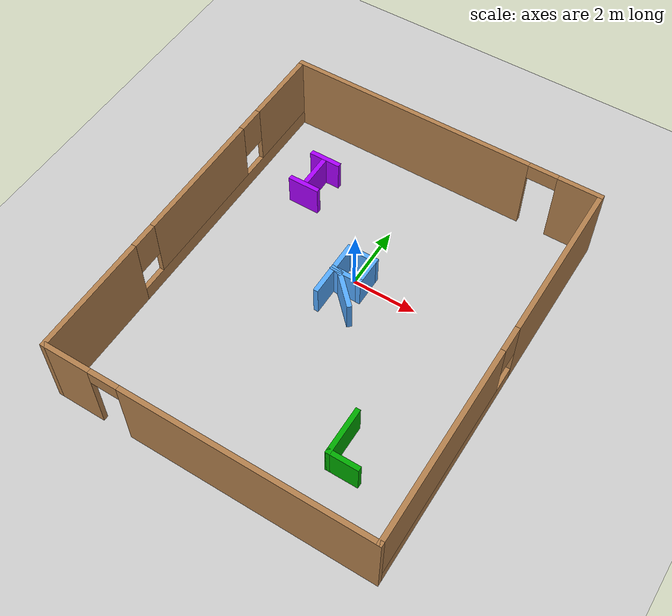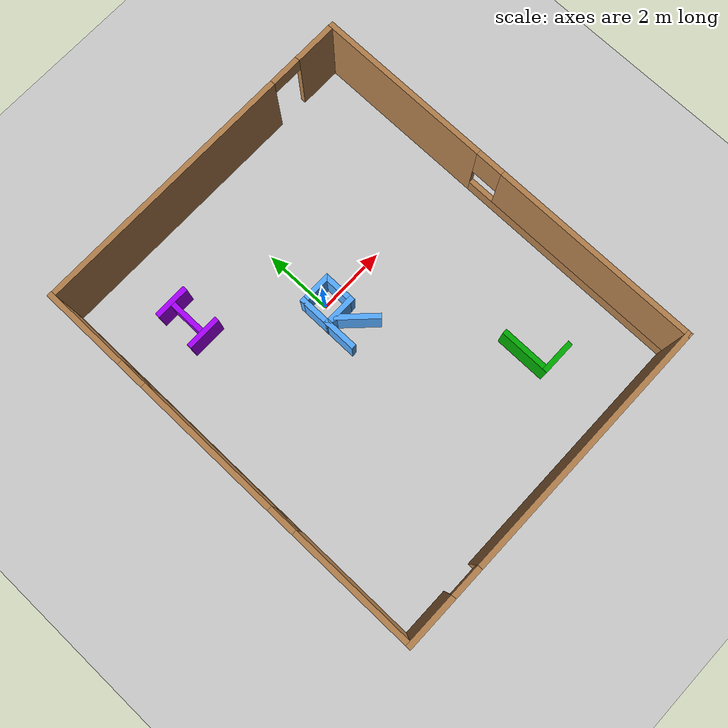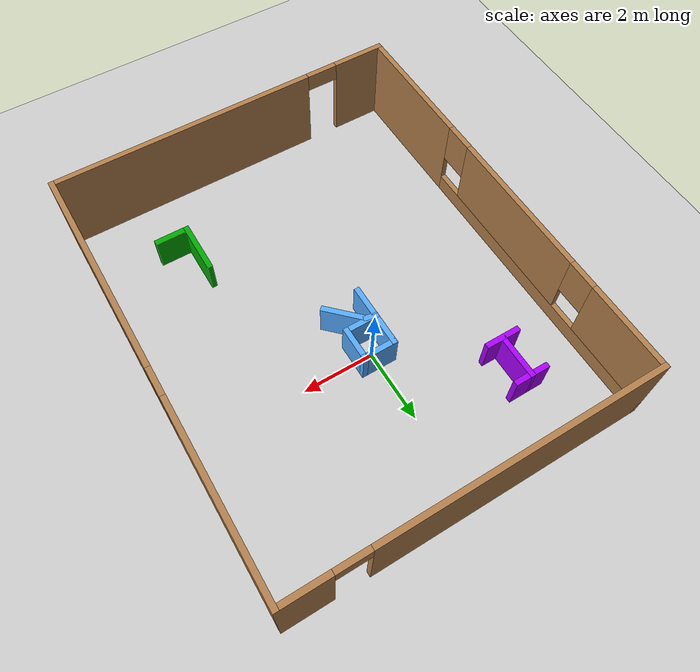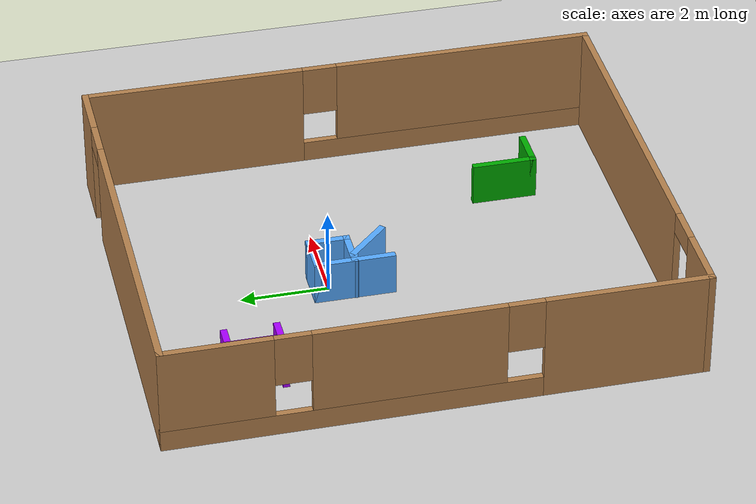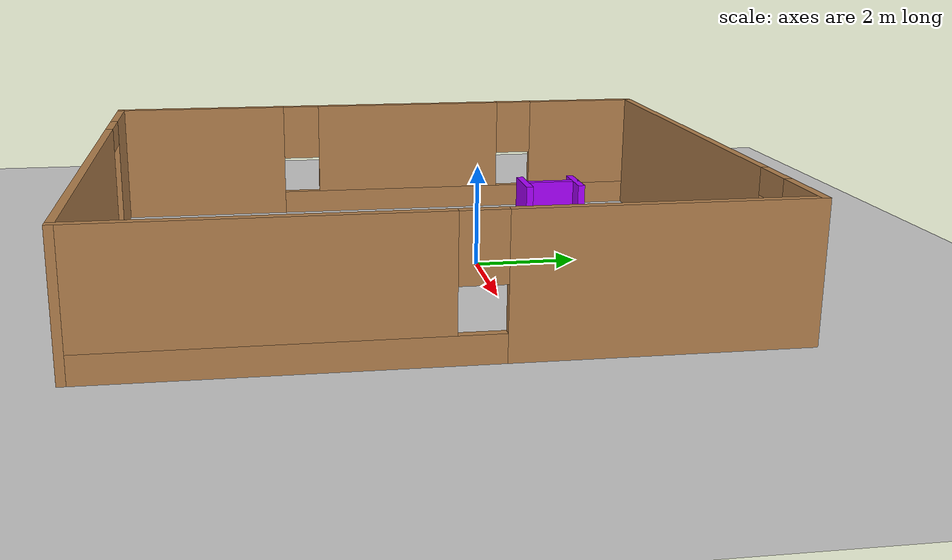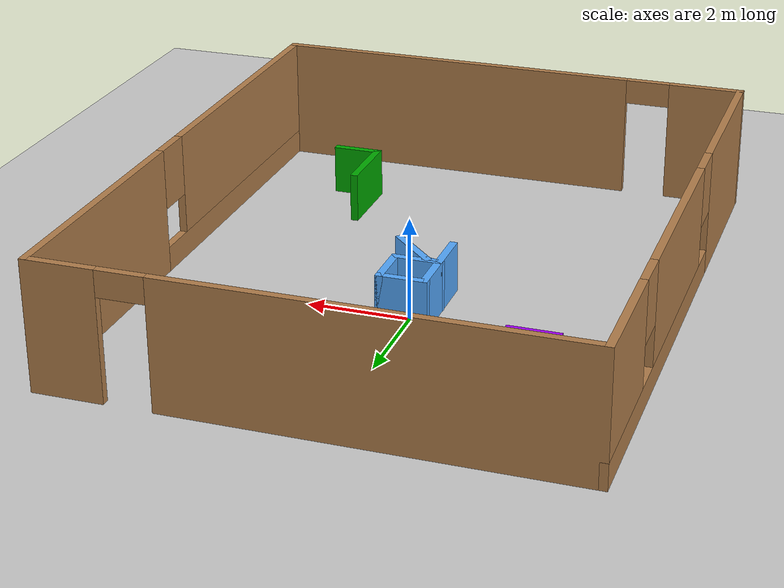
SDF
<sdf version="1.6">
 <world name="default">
  <light name="sun" type="directional">
   <pose>0 0 10 0 -0 0</pose>
   <diffuse>0.8 0.8 0.8 1</diffuse>
   <specular>0.1 0.1 0.1 1</specular>
   <attenuation>
    <range>1000</range>
    <constant>0.9</constant>
    <linear>0.01</linear>
    <quadratic>0.001</quadratic>
   </attenuation>
   <direction>-0.5 0.5 -1</direction>
  </light>
  <model name="ground_plane">
   <static>1</static>
   <link name="link">
    <collision name="collision">
     <geometry><plane><normal>0 0 1</normal><size>100 100</size></plane></geometry>
     <surface><friction><ode><mu>100</mu><mu2>50</mu2></ode></friction></surface>
    </collision>
    <visual name="visual">
     <cast_shadows>0</cast_shadows>
     <geometry><plane><normal>0 0 1</normal><size>100 100</size></plane></geometry>
     <material>
      <script><uri>file://media/materials/scripts/gazebo.material</uri><name>Gazebo/Grey</name></script>
     </material>
    </visual>
   </link>
  </model>
  <gravity>0 0 -9.8</gravity>
  <magnetic_field>6e-06 2.3e-05 -4.2e-05</magnetic_field>
  <atmosphere type="adiabatic"/>
  <physics name="default_physics" default="0" type="ode">
   <max_step_size>0.001</max_step_size>
   <real_time_factor>1</real_time_factor>
   <real_time_update_rate>1000</real_time_update_rate>
  </physics>
  <scene><ambient>0.4 0.4 0.4 1</ambient><background>0.7 0.7 0.7 1</background><shadows>1</shadows></scene>
  <spherical_coordinates>
   <surface_model>EARTH_WGS84</surface_model>
   <latitude_deg>0</latitude_deg>
   <longitude_deg>0</longitude_deg>
   <elevation>0</elevation>
   <heading_deg>0</heading_deg>
  </spherical_coordinates>
  <model name="IRL_lab_0">
   <pose>0.221897 -1.37505 0 0 -0 0</pose>
   <link name="Wall_29">
    <collision name="Wall_29_Collision">
     <geometry><box><size>1 0.15 1</size></box></geometry>
     <pose>0 0 0.5 0 -0 0</pose>
    </collision>
    <visual name="Wall_29_Visual">
     <pose>0 0 0.5 0 -0 0</pose>
     <geometry><box><size>1 0.15 1</size></box></geometry>
     <material>
      <script><uri>file://media/materials/scripts/gazebo.material</uri><name>Gazebo/Grey</name></script>
      <ambient>0.666667 0 1 1</ambient>
     </material>
    </visual>
    <pose>-2.97411 4.16319 0 0 -0 0</pose>
   </link>
   <link name="Wall_31">
    <collision name="Wall_31_Collision">
     <geometry><box><size>1.25 0.15 1</size></box></geometry>
     <pose>0 0 0.5 0 -0 0</pose>
    </collision>
    <visual name="Wall_31_Visual">
     <pose>0 0 0.5 0 -0 0</pose>
     <geometry><box><size>1.25 0.15 1</size></box></geometry>
     <material>
      <script><uri>file://media/materials/scripts/gazebo.material</uri><name>Gazebo/Grey</name></script>
      <ambient>0.666667 0 1 1</ambient>
     </material>
    </visual>
    <pose>-2.97911 3.61319 0 0 0 -1.5708</pose>
   </link>
   <link name="Wall_33">
    <collision name="Wall_33_Collision">
     <geometry><box><size>1 0.15 1</size></box></geometry>
     <pose>0 0 0.5 0 -0 0</pose>
    </collision>
    <visual name="Wall_33_Visual">
     <pose>0 0 0.5 0 -0 0</pose>
     <geometry><box><size>1 0.15 1</size></box></geometry>
     <material>
      <script><uri>file://media/materials/scripts/gazebo.material</uri><name>Gazebo/Grey</name></script>
      <ambient>0.666667 0 1 1</ambient>
     </material>
    </visual>
    <pose>-2.98211 3.00119 0 0 -0 0</pose>
   </link>
   <link name="Wall_35">
    <collision name="Wall_35_Collision">
     <geometry><box><size>1 0.15 1</size></box></geometry>
     <pose>0 0 0.5 0 -0 0</pose>
    </collision>
    <visual name="Wall_35_Visual">
     <pose>0 0 0.5 0 -0 0</pose>
     <geometry><box><size>1 0.15 1</size></box></geometry>
     <material>
      <script><uri>file://media/materials/scripts/gazebo.material</uri><name>Gazebo/Grey</name></script>
      <ambient>0.333333 0.666667 1 1</ambient>
     </material>
    </visual>
    <pose>-0.611111 1.28619 0 0 0 -1.5708</pose>
   </link>
   <link name="Wall_36">
    <collision name="Wall_36_Collision">
     <geometry><box><size>1 0.15 1</size></box></geometry>
     <pose>0 0 0.5 0 -0 0</pose>
    </collision>
    <visual name="Wall_36_Visual">
     <pose>0 0 0.5 0 -0 0</pose>
     <geometry><box><size>1 0.15 1</size></box></geometry>
     <material>
      <script><uri>file://media/materials/scripts/gazebo.material</uri><name>Gazebo/Grey</name></script>
      <ambient>0.333333 0.666667 1 1</ambient>
     </material>
    </visual>
    <pose>-0.186111 0.861194 0 0 -0 0</pose>
   </link>
   <link name="Wall_37">
    <collision name="Wall_37_Collision">
     <geometry><box><size>1 0.15 1</size></box></geometry>
     <pose>0 0 0.5 0 -0 0</pose>
    </collision>
    <visual name="Wall_37_Visual">
     <pose>0 0 0.5 0 -0 0</pose>
     <geometry><box><size>1 0.15 1</size></box></geometry>
     <material>
      <script><uri>file://media/materials/scripts/gazebo.material</uri><name>Gazebo/Grey</name></script>
      <ambient>0.333333 0.666667 1 1</ambient>
     </material>
    </visual>
    <pose>0.238889 1.28619 0 0 -0 1.5708</pose>
   </link>
   <link name="Wall_38">
    <collision name="Wall_38_Collision">
     <geometry><box><size>1 0.15 1</size></box></geometry>
     <pose>0 0 0.5 0 -0 0</pose>
    </collision>
    <visual name="Wall_38_Visual">
     <pose>0 0 0.5 0 -0 0</pose>
     <geometry><box><size>1 0.15 1</size></box></geometry>
     <material>
      <script><uri>file://media/materials/scripts/gazebo.material</uri><name>Gazebo/Grey</name></script>
      <ambient>0.333333 0.666667 1 1</ambient>
     </material>
    </visual>
    <pose>-0.186111 1.71119 0 0 -0 3.14159</pose>
   </link>
   <link name="Wall_40">
    <collision name="Wall_40_Collision">
     <geometry><box><size>1 0.15 1</size></box></geometry>
     <pose>0 0 0.5 0 -0 0</pose>
    </collision>
    <visual name="Wall_40_Visual">
     <pose>0 0 0.5 0 -0 0</pose>
     <geometry><box><size>1 0.15 1</size></box></geometry>
     <material>
      <script><uri>file://media/materials/scripts/gazebo.material</uri><name>Gazebo/Grey</name></script>
      <ambient>0.333333 0.666667 1 1</ambient>
     </material>
    </visual>
    <pose>-0.611111 0.436194 0 0 0 -1.5708</pose>
   </link>
   <link name="Wall_6">
    <pose>0 5.925 0 0 -0 0</pose>
    <visual name="Wall_6_Visual_0">
     <pose>-1.13461 0 1.25 0 -0 0</pose>
     <geometry><box><size>7.73077 0.15 2.5</size></box></geometry>
     <material>
      <script><uri>file://media/materials/scripts/gazebo.material</uri><name>Gazebo/Wood</name></script>
      <ambient>1 1 1 1</ambient>
     </material>
    </visual>
    <collision name="Wall_6_Collision_0">
     <geometry><box><size>7.73077 0.15 2.5</size></box></geometry>
     <pose>-1.13461 0 1.25 0 -0 0</pose>
    </collision>
    <visual name="Wall_6_Visual_1">
     <pose>4.31539 0 1.25 0 -0 0</pose>
     <geometry><box><size>1.36923 0.15 2.5</size></box></geometry>
     <material>
      <script><uri>file://media/materials/scripts/gazebo.material</uri><name>Gazebo/Wood</name></script>
      <ambient>1 1 1 1</ambient>
     </material>
    </visual>
    <collision name="Wall_6_Collision_1">
     <geometry><box><size>1.36923 0.15 2.5</size></box></geometry>
     <pose>4.31539 0 1.25 0 -0 0</pose>
    </collision>
    <visual name="Wall_6_Visual_2">
     <pose>3.18077 0 2.25 0 -0 0</pose>
     <geometry><box><size>0.9 0.15 0.5</size></box></geometry>
     <material>
      <script><uri>file://media/materials/scripts/gazebo.material</uri><name>Gazebo/Wood</name></script>
      <ambient>1 1 1 1</ambient>
     </material>
    </visual>
    <collision name="Wall_6_Collision_2">
     <geometry><box><size>0.9 0.15 0.5</size></box></geometry>
     <pose>3.18077 0 2.25 0 -0 0</pose>
    </collision>
   </link>
   <link name="Wall_60">
    <collision name="Wall_60_Collision">
     <geometry><box><size>0.406024 0.15 1</size></box></geometry>
     <pose>0 0 0.5 0 -0 0</pose>
    </collision>
    <visual name="Wall_60_Visual">
     <pose>0 0 0.5 0 -0 0</pose>
     <geometry><box><size>0.406024 0.15 1</size></box></geometry>
     <material>
      <script><uri>file://media/materials/scripts/gazebo.material</uri><name>Gazebo/Grey</name></script>
      <ambient>0.333333 0.666667 1 1</ambient>
     </material>
    </visual>
    <pose>-0.486111 0.834194 0 0 0 -0.212732</pose>
   </link>
   <link name="Wall_63">
    <collision name="Wall_63_Collision">
     <geometry><box><size>1.25 0.15 1</size></box></geometry>
     <pose>0 0 0.5 0 -0 0</pose>
    </collision>
    <visual name="Wall_63_Visual">
     <pose>0 0 0.5 0 -0 0</pose>
     <geometry><box><size>1.25 0.15 1</size></box></geometry>
     <material>
      <script><uri>file://media/materials/scripts/gazebo.material</uri><name>Gazebo/Grey</name></script>
      <ambient>0.333333 0.666667 1 1</ambient>
     </material>
    </visual>
    <pose>0.027889 0.418194 0 0 -0 2.35619</pose>
   </link>
   <link name="Wall_65">
    <collision name="Wall_65_Collision">
     <geometry><box><size>1.5 0.15 1</size></box></geometry>
     <pose>0 0 0.5 0 -0 0</pose>
    </collision>
    <visual name="Wall_65_Visual">
     <pose>0 0 0.5 0 -0 0</pose>
     <geometry><box><size>1.5 0.15 1</size></box></geometry>
     <material>
      <script><uri>file://media/materials/scripts/gazebo.material</uri><name>Gazebo/Grey</name></script>
      <ambient>0 0.666667 0 1</ambient>
     </material>
    </visual>
    <pose>2.32089 -3.32381 0 0 0 -1.5708</pose>
   </link>
   <link name="Wall_66">
    <collision name="Wall_66_Collision">
     <geometry><box><size>1 0.15 1</size></box></geometry>
     <pose>0 0 0.5 0 -0 0</pose>
    </collision>
    <visual name="Wall_66_Visual">
     <pose>0 0 0.5 0 -0 0</pose>
     <geometry><box><size>1 0.15 1</size></box></geometry>
     <material>
      <script><uri>file://media/materials/scripts/gazebo.material</uri><name>Gazebo/Grey</name></script>
      <ambient>0 0.666667 0 1</ambient>
     </material>
    </visual>
    <pose>2.74589 -3.99881 0 0 -0 0</pose>
   </link>
   <link name="Wall_7">
    <pose>4.925 0 0 0 0 -1.5708</pose>
    <visual name="Wall_7_Visual_0">
     <pose>-3.42987 0 1.25 0 -0 0</pose>
     <geometry><box><size>5.14025 0.15 2.5</size></box></geometry>
     <material>
      <script><uri>file://media/materials/scripts/gazebo.material</uri><name>Gazebo/Wood</name></script>
      <ambient>1 1 1 1</ambient>
     </material>
    </visual>
    <collision name="Wall_7_Collision_0">
     <geometry><box><size>5.14025 0.15 2.5</size></box></geometry>
     <pose>-3.42987 0 1.25 0 -0 0</pose>
    </collision>
    <visual name="Wall_7_Visual_1">
     <pose>2.57013 0 0.25 0 -0 0</pose>
     <geometry><box><size>6.85975 0.15 0.5</size></box></geometry>
     <material>
      <script><uri>file://media/materials/scripts/gazebo.material</uri><name>Gazebo/Wood</name></script>
      <ambient>1 1 1 1</ambient>
     </material>
    </visual>
    <collision name="Wall_7_Collision_1">
     <geometry><box><size>6.85975 0.15 0.5</size></box></geometry>
     <pose>2.57013 0 0.25 0 -0 0</pose>
    </collision>
    <visual name="Wall_7_Visual_2">
     <pose>2.97013 0 1.5 0 -0 0</pose>
     <geometry><box><size>6.05975 0.15 2</size></box></geometry>
     <material>
      <script><uri>file://media/materials/scripts/gazebo.material</uri><name>Gazebo/Wood</name></script>
      <ambient>1 1 1 1</ambient>
     </material>
    </visual>
    <collision name="Wall_7_Collision_2">
     <geometry><box><size>6.05975 0.15 2</size></box></geometry>
     <pose>2.97013 0 1.5 0 -0 0</pose>
    </collision>
    <visual name="Wall_7_Visual_3">
     <pose>-0.459745 0 1.9 0 -0 0</pose>
     <geometry><box><size>0.8 0.15 1.2</size></box></geometry>
     <material>
      <script><uri>file://media/materials/scripts/gazebo.material</uri><name>Gazebo/Wood</name></script>
      <ambient>1 1 1 1</ambient>
     </material>
    </visual>
    <collision name="Wall_7_Collision_3">
     <geometry><box><size>0.8 0.15 1.2</size></box></geometry>
     <pose>-0.459745 0 1.9 0 -0 0</pose>
    </collision>
   </link>
   <link name="Wall_8">
    <pose>0 -5.925 0 0 -0 3.14159</pose>
    <visual name="Wall_8_Visual_0">
     <pose>-1.21789 0 1.25 0 -0 0</pose>
     <geometry><box><size>7.56421 0.15 2.5</size></box></geometry>
     <material>
      <script><uri>file://media/materials/scripts/gazebo.material</uri><name>Gazebo/Wood</name></script>
      <ambient>1 1 1 1</ambient>
     </material>
    </visual>
    <collision name="Wall_8_Collision_0">
     <geometry><box><size>7.56421 0.15 2.5</size></box></geometry>
     <pose>-1.21789 0 1.25 0 -0 0</pose>
    </collision>
    <visual name="Wall_8_Visual_1">
     <pose>4.2321 0 1.25 0 -0 0</pose>
     <geometry><box><size>1.53579 0.15 2.5</size></box></geometry>
     <material>
      <script><uri>file://media/materials/scripts/gazebo.material</uri><name>Gazebo/Wood</name></script>
      <ambient>1 1 1 1</ambient>
     </material>
    </visual>
    <collision name="Wall_8_Collision_1">
     <geometry><box><size>1.53579 0.15 2.5</size></box></geometry>
     <pose>4.2321 0 1.25 0 -0 0</pose>
    </collision>
    <visual name="Wall_8_Visual_2">
     <pose>3.01421 0 2.25 0 -0 0</pose>
     <geometry><box><size>0.9 0.15 0.5</size></box></geometry>
     <material>
      <script><uri>file://media/materials/scripts/gazebo.material</uri><name>Gazebo/Wood</name></script>
      <ambient>1 1 1 1</ambient>
     </material>
    </visual>
    <collision name="Wall_8_Collision_2">
     <geometry><box><size>0.9 0.15 0.5</size></box></geometry>
     <pose>3.01421 0 2.25 0 -0 0</pose>
    </collision>
   </link>
   <link name="Wall_9">
    <pose>-4.925 0 0 0 -0 1.5708</pose>
    <visual name="Wall_9_Visual_0">
     <pose>-4.13908 0 1.25 0 -0 0</pose>
     <geometry><box><size>3.72183 0.15 2.5</size></box></geometry>
     <material>
      <script><uri>file://media/materials/scripts/gazebo.material</uri><name>Gazebo/Wood</name></script>
      <ambient>1 1 1 1</ambient>
     </material>
    </visual>
    <collision name="Wall_9_Collision_0">
     <geometry><box><size>3.72183 0.15 2.5</size></box></geometry>
     <pose>-4.13908 0 1.25 0 -0 0</pose>
    </collision>
    <visual name="Wall_9_Visual_1">
     <pose>1.86092 0 0.25 0 -0 0</pose>
     <geometry><box><size>8.27817 0.15 0.5</size></box></geometry>
     <material>
      <script><uri>file://media/materials/scripts/gazebo.material</uri><name>Gazebo/Wood</name></script>
      <ambient>1 1 1 1</ambient>
     </material>
    </visual>
    <collision name="Wall_9_Collision_1">
     <geometry><box><size>8.27817 0.15 0.5</size></box></geometry>
     <pose>1.86092 0 0.25 0 -0 0</pose>
    </collision>
    <visual name="Wall_9_Visual_2">
     <pose>0.626739 0 1.5 0 -0 0</pose>
     <geometry><box><size>4.20982 0.15 2</size></box></geometry>
     <material>
      <script><uri>file://media/materials/scripts/gazebo.material</uri><name>Gazebo/Wood</name></script>
      <ambient>1 1 1 1</ambient>
     </material>
    </visual>
    <collision name="Wall_9_Collision_2">
     <geometry><box><size>4.20982 0.15 2</size></box></geometry>
     <pose>0.626739 0 1.5 0 -0 0</pose>
    </collision>
    <visual name="Wall_9_Visual_3">
     <pose>4.76582 0 1.5 0 -0 0</pose>
     <geometry><box><size>2.46835 0.15 2</size></box></geometry>
     <material>
      <script><uri>file://media/materials/scripts/gazebo.material</uri><name>Gazebo/Wood</name></script>
      <ambient>1 1 1 1</ambient>
     </material>
    </visual>
    <collision name="Wall_9_Collision_3">
     <geometry><box><size>2.46835 0.15 2</size></box></geometry>
     <pose>4.76582 0 1.5 0 -0 0</pose>
    </collision>
    <visual name="Wall_9_Visual_4">
     <pose>-1.87817 0 1.9 0 -0 0</pose>
     <geometry><box><size>0.8 0.15 1.2</size></box></geometry>
     <material>
      <script><uri>file://media/materials/scripts/gazebo.material</uri><name>Gazebo/Wood</name></script>
      <ambient>1 1 1 1</ambient>
     </material>
    </visual>
    <collision name="Wall_9_Collision_4">
     <geometry><box><size>0.8 0.15 1.2</size></box></geometry>
     <pose>-1.87817 0 1.9 0 -0 0</pose>
    </collision>
    <visual name="Wall_9_Visual_5">
     <pose>3.13165 0 1.9 0 -0 0</pose>
     <geometry><box><size>0.8 0.15 1.2</size></box></geometry>
     <material>
      <script><uri>file://media/materials/scripts/gazebo.material</uri><name>Gazebo/Wood</name></script>
      <ambient>1 1 1 1</ambient>
     </material>
    </visual>
    <collision name="Wall_9_Collision_5">
     <geometry><box><size>0.8 0.15 1.2</size></box></geometry>
     <pose>3.13165 0 1.9 0 -0 0</pose>
    </collision>
   </link>
   <static>1</static>
  </model>
 </world>
</sdf>
